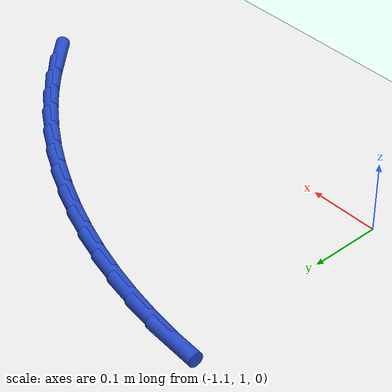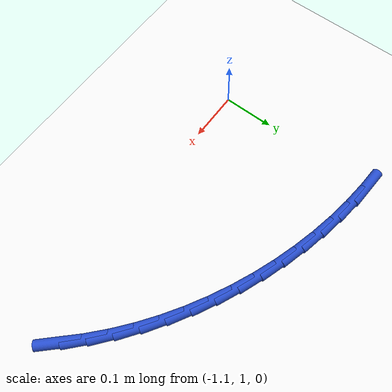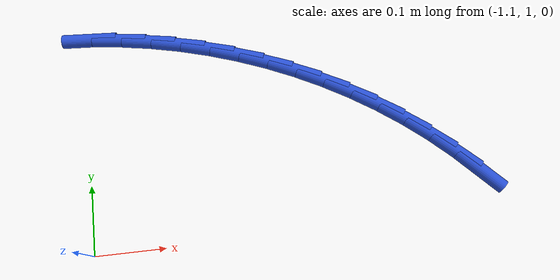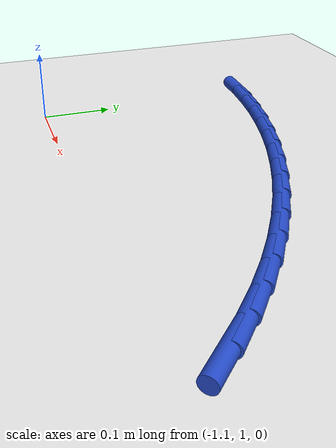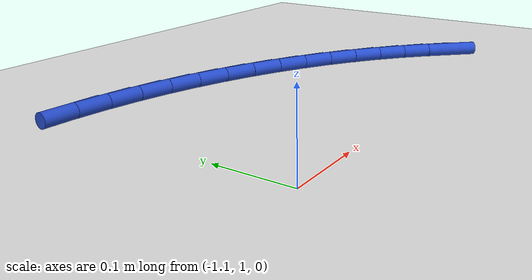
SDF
<sdf version="1.6">
 <world name="default">
  <model name="ground_plane">
   <static>1</static>
   <link name="link">
    <collision name="collision">
     <geometry><plane><normal>0 0 1</normal><size>100 100</size></plane></geometry>
     <surface><friction><ode><mu>100</mu><mu2>50</mu2></ode></friction></surface>
    </collision>
    <visual name="visual">
     <cast_shadows>0</cast_shadows>
     <geometry><plane><normal>0 0 1</normal><size>100 100</size></plane></geometry>
     <material>
      <script><uri>file://media/materials/scripts/gazebo.material</uri><name>Gazebo/WhiteGlow</name></script>
     </material>
    </visual>
   </link>
  </model>
  <model name="line">
   <link name="link_28">
    <pose>-0.5449326961752677 1.0577765173266243 0.01 0 1.57 -0.8081801863817377</pose>
    <collision name="collision">
     <geometry><cylinder><radius>0.01</radius><length>0.08</length></cylinder></geometry>
    </collision>
    <visual name="visual">
     <material>
      <script><name>Gazebo/Blue</name><uri>file://media/materials/scripts/gazebo.material</uri></script>
     </material>
     <geometry><cylinder><radius>0.01</radius><length>0.08</length></cylinder></geometry>
    </visual>
   </link>
   <link name="link_29">
    <pose>-0.5747824612413662 1.0890183125627728 0.01 0 1.57 -0.7480066415759706</pose>
    <collision name="collision">
     <geometry><cylinder><radius>0.01</radius><length>0.08</length></cylinder></geometry>
    </collision>
    <visual name="visual">
     <material>
      <script><name>Gazebo/Blue</name><uri>file://media/materials/scripts/gazebo.material</uri></script>
     </material>
     <geometry><cylinder><radius>0.01</radius><length>0.08</length></cylinder></geometry>
    </visual>
   </link>
   <link name="link_30">
    <pose>-0.6065991513762627 1.11854038358294 0.01 0 1.57 -0.6897903795208525</pose>
    <collision name="collision">
     <geometry><cylinder><radius>0.01</radius><length>0.08</length></cylinder></geometry>
    </collision>
    <visual name="visual">
     <material>
      <script><name>Gazebo/Blue</name><uri>file://media/materials/scripts/gazebo.material</uri></script>
     </material>
     <geometry><cylinder><radius>0.01</radius><length>0.08</length></cylinder></geometry>
    </visual>
   </link>
   <link name="link_31">
    <pose>-0.6402419378927278 1.146295135983475 0.01 0 1.57 -0.6333486373392374</pose>
    <collision name="collision">
     <geometry><cylinder><radius>0.01</radius><length>0.08</length></cylinder></geometry>
    </collision>
    <visual name="visual">
     <material>
      <script><name>Gazebo/Blue</name><uri>file://media/materials/scripts/gazebo.material</uri></script>
     </material>
     <geometry><cylinder><radius>0.01</radius><length>0.08</length></cylinder></geometry>
    </visual>
   </link>
   <link name="link_32">
    <pose>-0.6755699921035327 1.1722349753607268 0.01 0 1.57 -0.5784735718401259</pose>
    <collision name="collision">
     <geometry><cylinder><radius>0.01</radius><length>0.08</length></cylinder></geometry>
    </collision>
    <visual name="visual">
     <material>
      <script><name>Gazebo/Blue</name><uri>file://media/materials/scripts/gazebo.material</uri></script>
     </material>
     <geometry><cylinder><radius>0.01</radius><length>0.08</length></cylinder></geometry>
    </visual>
   </link>
   <link name="link_33">
    <pose>-0.7124424853214479 1.1963123073110435 0.01 0 1.57 -0.5249401805187072</pose>
    <collision name="collision">
     <geometry><cylinder><radius>0.01</radius><length>0.08</length></cylinder></geometry>
    </collision>
    <visual name="visual">
     <material>
      <script><name>Gazebo/Blue</name><uri>file://media/materials/scripts/gazebo.material</uri></script>
     </material>
     <geometry><cylinder><radius>0.01</radius><length>0.08</length></cylinder></geometry>
    </visual>
   </link>
   <link name="link_34">
    <pose>-0.7507185888592446 1.2184795374307749 0.01 0 1.57 -0.4725123833153278</pose>
    <collision name="collision">
     <geometry><cylinder><radius>0.01</radius><length>0.08</length></cylinder></geometry>
    </collision>
    <visual name="visual">
     <material>
      <script><name>Gazebo/Blue</name><uri>file://media/materials/scripts/gazebo.material</uri></script>
     </material>
     <geometry><cylinder><radius>0.01</radius><length>0.08</length></cylinder></geometry>
    </visual>
   </link>
   <link name="link_35">
    <pose>-0.7902574740296934 1.2386890713162695 0.01 0 1.57 -0.4209475074292948</pose>
    <collision name="collision">
     <geometry><cylinder><radius>0.01</radius><length>0.08</length></cylinder></geometry>
    </collision>
    <visual name="visual">
     <material>
      <script><name>Gazebo/Blue</name><uri>file://media/materials/scripts/gazebo.material</uri></script>
     </material>
     <geometry><cylinder><radius>0.01</radius><length>0.08</length></cylinder></geometry>
    </visual>
   </link>
   <link name="link_36">
    <pose>-0.8309183121455652 1.2568933145638763 0.01 0 1.57 -0.36999947861142113</pose>
    <collision name="collision">
     <geometry><cylinder><radius>0.01</radius><length>0.08</length></cylinder></geometry>
    </collision>
    <visual name="visual">
     <material>
      <script><name>Gazebo/Blue</name><uri>file://media/materials/scripts/gazebo.material</uri></script>
     </material>
     <geometry><cylinder><radius>0.01</radius><length>0.08</length></cylinder></geometry>
    </visual>
   </link>
   <link name="link_37">
    <pose>-0.872560274519631 1.2730446727699443 0.01 0 1.57 -0.3194210382520062</pose>
    <collision name="collision">
     <geometry><cylinder><radius>0.01</radius><length>0.08</length></cylinder></geometry>
    </collision>
    <visual name="visual">
     <material>
      <script><name>Gazebo/Blue</name><uri>file://media/materials/scripts/gazebo.material</uri></script>
     </material>
     <geometry><cylinder><radius>0.01</radius><length>0.08</length></cylinder></geometry>
    </visual>
   </link>
   <link name="link_38">
    <pose>-0.9150425324646615 1.287095551530822 0.01 0 1.57 -0.2689652978305768</pose>
    <collision name="collision">
     <geometry><cylinder><radius>0.01</radius><length>0.08</length></cylinder></geometry>
    </collision>
    <visual name="visual">
     <material>
      <script><name>Gazebo/Blue</name><uri>file://media/materials/scripts/gazebo.material</uri></script>
     </material>
     <geometry><cylinder><radius>0.01</radius><length>0.08</length></cylinder></geometry>
    </visual>
   </link>
   <link name="link_39">
    <pose>-0.9582242572934281 1.298998356442859 0.01 0 1.57 -0.21838692591371678</pose>
    <collision name="collision">
     <geometry><cylinder><radius>0.01</radius><length>0.08</length></cylinder></geometry>
    </collision>
    <visual name="visual">
     <material>
      <script><name>Gazebo/Blue</name><uri>file://media/materials/scripts/gazebo.material</uri></script>
     </material>
     <geometry><cylinder><radius>0.01</radius><length>0.08</length></cylinder></geometry>
    </visual>
   </link>
   <link name="link_40">
    <pose>-1.001964620318701 1.3087054931024038 0.01 0 1.57 -0.1674371363741824</pose>
    <collision name="collision">
     <geometry><cylinder><radius>0.01</radius><length>0.08</length></cylinder></geometry>
    </collision>
    <visual name="visual">
     <material>
      <script><name>Gazebo/Blue</name><uri>file://media/materials/scripts/gazebo.material</uri></script>
     </material>
     <geometry><cylinder><radius>0.01</radius><length>0.08</length></cylinder></geometry>
    </visual>
   </link>
   <link name="link_41">
    <pose>-1.046122514006533 1.3161690424302528 0.01 0 1.57 -0.11538436155777022</pose>
    <collision name="collision">
     <geometry><cylinder><radius>0.01</radius><length>0.08</length></cylinder></geometry>
    </collision>
    <visual name="visual">
     <material>
      <script><name>Gazebo/Blue</name><uri>file://media/materials/scripts/gazebo.material</uri></script>
     </material>
     <geometry><cylinder><radius>0.01</radius><length>0.08</length></cylinder></geometry>
    </visual>
   </link>
   <link name="link_42">
    <pose>-1.0905357112680854 1.3213164947649487 0.01 0 1.57 -0.061030810334161884</pose>
    <collision name="collision">
     <geometry><cylinder><radius>0.01</radius><length>0.08</length></cylinder></geometry>
    </collision>
    <visual name="visual">
     <material>
      <script><name>Gazebo/Blue</name><uri>file://media/materials/scripts/gazebo.material</uri></script>
     </material>
     <geometry><cylinder><radius>0.01</radius><length>0.08</length></cylinder></geometry>
    </visual>
   </link>
  </model>
 </world>
</sdf>
